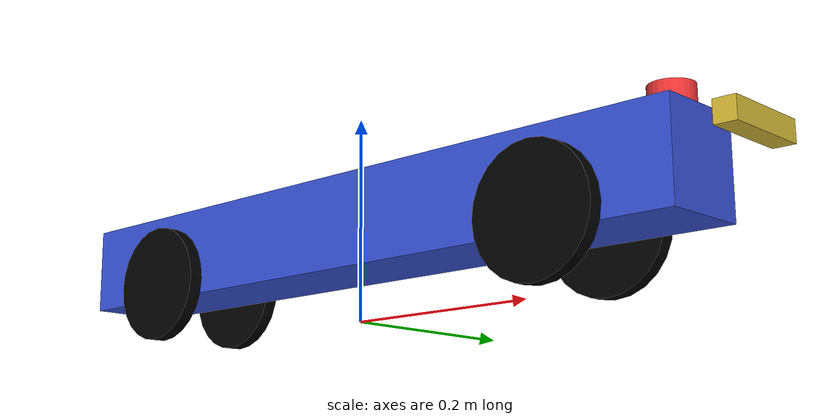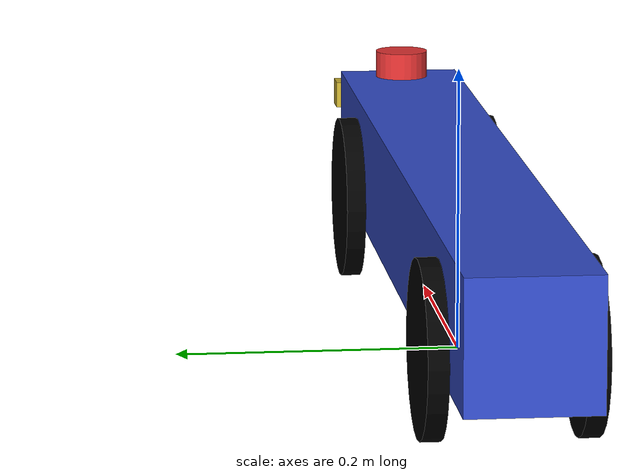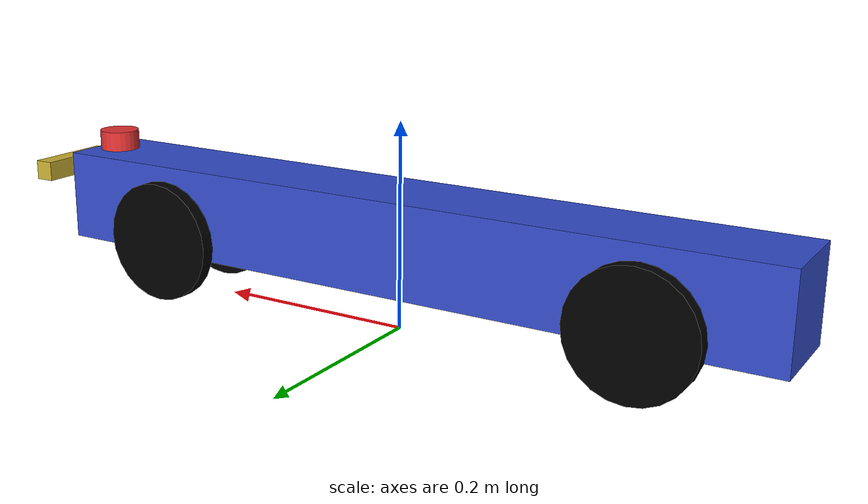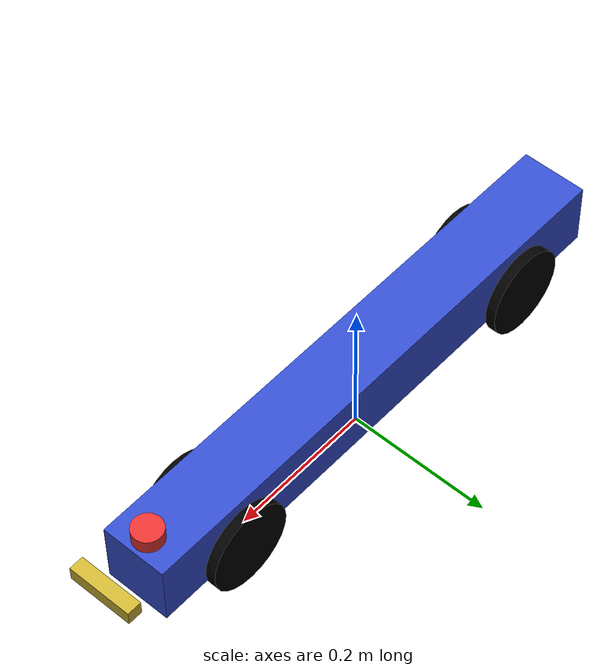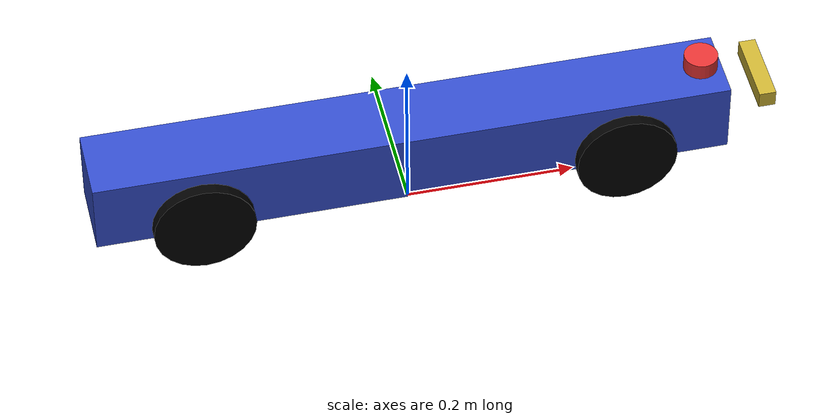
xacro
<?xml version="1.0"?>
<robot name="carbot" xmlns:xacro="http://www.ros.org/wiki/xacro">

    <!-- 外观模型（visual）+ link + joint   纯模型不包含物理属性，方便在RViz中查看 -->

    <!-- 蓝色 --><material name="blue"><color rgba="0.2 0.3 0.8 1.0"/></material>
    <!-- 黑色 --><material name="black"><color rgba="0.0 0.0 0.0 1.0"/></material>
    <!-- 红色 --><material name="red"><color rgba="0.9 0.2 0.2 1.0"/></material>
    <!-- 绿色 --><material name="green"><color rgba="0.2 0.8 0.3 1.0"/></material>
    <!-- 黄色 --><material name="yellow"><color rgba="0.8 0.7 0.2 1.0"/></material>
    <!-- 灰色 --><material name="gray"><color rgba="0.1 0.1 0.1 1.0"/></material>

  <!-- base_footprint 虚拟坐标系，不用加物理属性 -->
  <link name="base_footprint" />

  <!-- 车身 -->
  <link name="base_link">
    <visual>
      <origin xyz="0 0 0" rpy="0 0 0"/><!-- 前后   左右  上下 -->
      <geometry>
        <!-- 长方体：长 × 宽 × 高 -->
        <box size="0.75 0.09 0.09"/>
      </geometry>
      <material name="blue"/>
    </visual>
    <xacro:base_physics />
  </link>

  <!-- 雷达 -->
  <link name="laser_link">
      <visual>
      <origin xyz="0 0 0" rpy="0 0 0"/>
      <geometry>
        <cylinder length="0.02" radius="0.02"/>
      </geometry>
      <material name="red"/>
    </visual>
    <xacro:lidar_physics />
  </link>

  <!-- 左前车轮 -->
  <link name="left_front_wheel_link">
    <visual>
      <origin xyz="0 0 0" rpy="0 0 0"/>
      <geometry>
          <cylinder radius="0.06" length="0.014"/> <!-- 实际车轮尺寸：直径0.095m，宽度0.014m -->
      </geometry>
      <material name="black"/>
    </visual>
    <xacro:wheel_physics /> <!-- 添加物理属性 -->
  </link>

  <!-- 右前车轮 -->
  <link name="right_front_wheel_link">
    <visual>
      <origin xyz="0 0 0" rpy="0 0 0"/>
      <geometry>
          <cylinder radius="0.06" length="0.014"/> <!-- 实际车轮尺寸：直径0.095m，宽度0.014m  加直径为0.12m为了美观 -->
      </geometry>
      <material name="black"/>
    </visual>
    <xacro:wheel_physics /> <!-- 添加物理属性 -->
  </link>

  <!-- 左后车轮 -->
  <link name="left_back_wheel_link">
    <visual>
      <origin xyz="0 0 0" rpy="0 0 0"/>
      <geometry>
          <cylinder radius="0.06" length="0.014"/>
      </geometry>
      <material name="black"/>
    </visual>
    <xacro:wheel_physics /> <!-- 添加物理属性 -->
  </link>

  <!-- 右后车轮 -->
  <link name="right_back_wheel_link">
    <visual>
      <origin xyz="0 0 0" rpy="0 0 0"/>
      <geometry>
          <cylinder radius="0.06" length="0.014"/>
      </geometry>
      <material name="black"/>
    </visual>
    <xacro:wheel_physics /> <!-- 添加物理属性 -->
  </link>

  <!-- imu link -->
  <link name="imu_link">
    <visual>
      <origin xyz="0 0 0.0" rpy="0 0 0"/>
      <geometry>
            <box size="0.02 0.02 0.02"/>
      </geometry>
    </visual>
    <xacro:imu_physics />
  </link>

  <!-- 深度相机 link -->
  <link name="depth_camera_link">
    <visual>
      <origin xyz="0 0 0" rpy="0 0 0"/>
      <!-- 相机外形：小长方体，尺寸可自行修改 -->
      <geometry>
        <box size="0.02 0.09 0.02"/>
      </geometry>
      <material name="yellow"/>
    </visual>
    <xacro:camera_physics />
  </link>

<!-- ==========================================
                    关节
    ==========================================-->

  <!-- 虚拟和车身 joint -->
  <joint name="footprint__base_joint" type="fixed">
      <parent link="base_footprint" />
      <child link="base_link" />
      <origin xyz="0 0 0.09" />  <!-- 前后   左右  上下   -->
  </joint>

  <!-- 雷达和车身 joint -->
  <joint name="base_laser_joint" type="fixed">
      <parent link="base_link" />
      <child link="laser_link" />
      <origin xyz="0.35 0 0.055" />  <!-- 前后   左右  上下：车身高度/2+雷达高度-->
  </joint>

    <!-- 左前轮 -->
  <joint name="left_front_wheel_joint" type="continuous">
      <parent link="base_link"/>
      <child link="left_front_wheel_link"/>
      <!-- 关键改动：z轴从0改为-0.03，让轮胎整体下移3cm -->
      <origin xyz="0.25  0.052  -0.03" rpy="-1.5708 0 0"/>
      <axis xyz="0 0 1" />
  </joint>

  <!-- 右前轮 -->
  <joint name="right_front_wheel_joint" type="continuous">
      <parent link="base_link"/>
      <child link="right_front_wheel_link"/>
      <!-- 关键改动：z轴从0改为-0.03，让轮胎整体下移3cm -->
      <origin xyz="0.25 -0.052  -0.03" rpy="-1.5708 0 0"/>
      <axis xyz="0 0 1" />
  </joint>

  <!-- 左后轮 -->
  <joint name="left_back_wheel_joint" type="continuous">
      <parent link="base_link"/>
      <child link="left_back_wheel_link"/>
      <!-- 关键改动：z轴从0改为-0.03，让轮胎整体下移3cm -->
      <origin xyz="-0.25  0.052  -0.03" rpy="-1.5708 0 0"/>
      <axis xyz="0 0 1" />
  </joint>

  <!-- 右后轮 -->
  <joint name="right_back_wheel_joint" type="continuous">
      <parent link="base_link"/>
      <child link="right_back_wheel_link"/>
      <!-- 关键改动：z轴从0改为-0.03，让轮胎整体下移3cm -->
      <origin xyz="-0.25 -0.052  -0.03" rpy="-1.5708 0 0"/>
      <axis xyz="0 0 1" />
  </joint>

  <!-- imu joint -->
  <joint name="imu_joint" type="fixed">
      <parent link="base_link" />
      <child link="imu_link" />
      <origin xyz="0 0 0" />
  </joint>

  <!-- 深度相机 固定关节，安装在车头最前端 -->
<joint name="depth_camera_joint" type="fixed">
  <parent link="base_link"/>
  <child link="depth_camera_link"/>
  <!-- x=0.375 车身总长0.75/2+相机厚度0.02/2；y=0居中；z=0.02 安装在车身前部下方 -->
  <origin xyz="0.42 0 0.02" rpy="0 0 0"/>
</joint>
 <!-- 深度相机 虚拟坐标-->
<link name="camera_color_optical_frame" />

<joint name="camera_optical_joint" type="fixed">
  <parent link="depth_camera_link"/>
  <child link="camera_color_optical_frame"/>
  <origin xyz="0 0 0" rpy="-1.5708 0 -1.5708"/>
</joint>

</robot>
